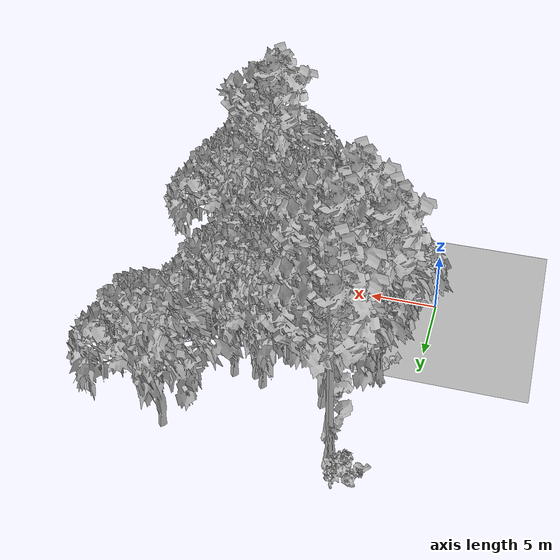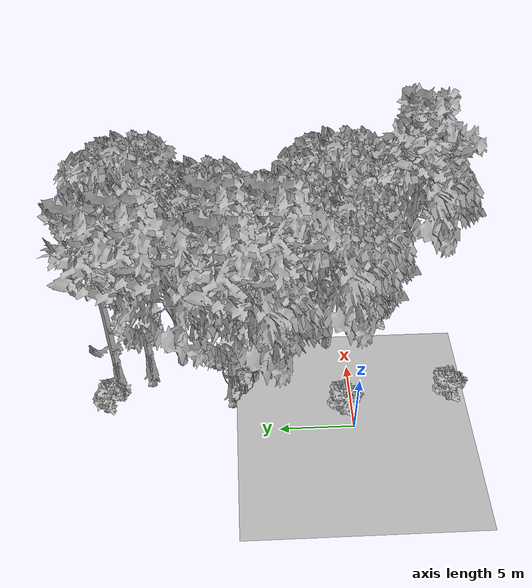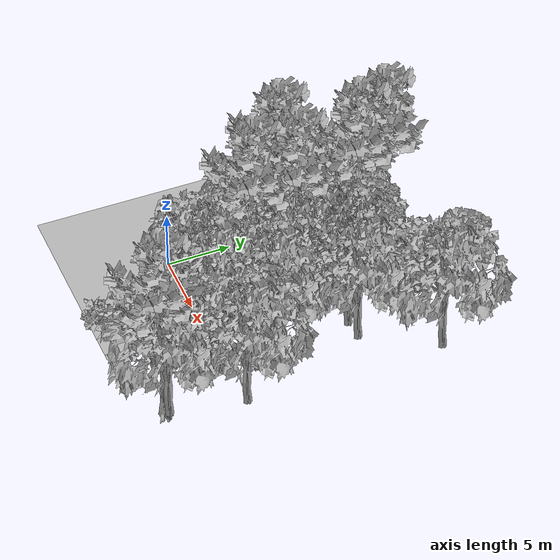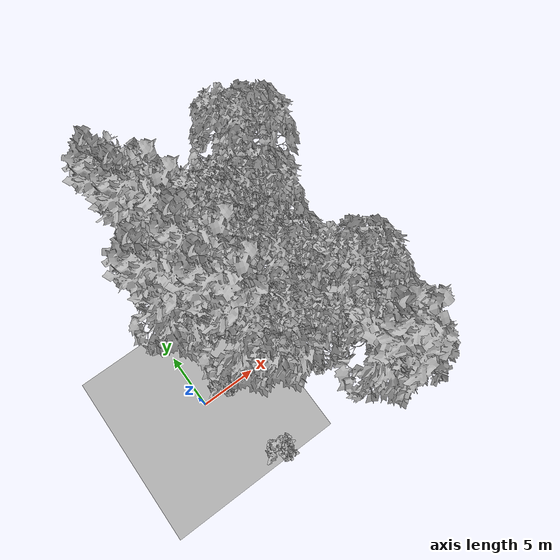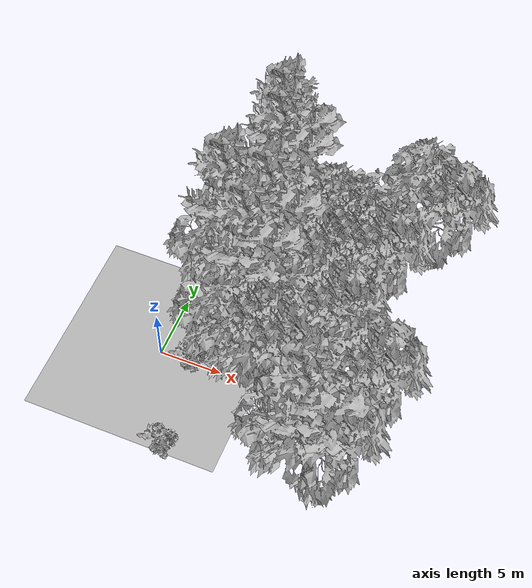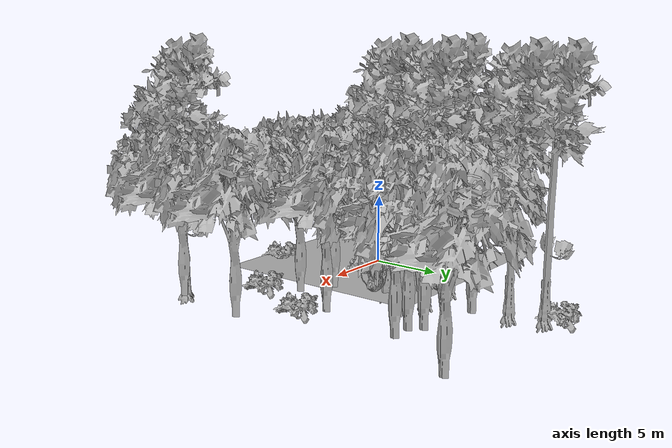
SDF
<sdf version="1.7">
 <world name="default">
  <model name="ground_plane">
   <static>1</static>
   <link name="link">
    <collision name="collision">
     <geometry><plane><normal>0 0 1</normal><size>70 70</size></plane></geometry>
     <surface><contact><ode><min_depth>0.01</min_depth><max_vel>0</max_vel></ode></contact></surface>
    </collision>
    <visual name="grass">
     <cast_shadows>0</cast_shadows>
     <geometry>
      <mesh>
       <scale>0.29000000000000004 0.29000000000000004 0.1</scale>
       <uri>file://grass_plane/meshes/grass_plane.dae</uri>
      </mesh>
     </geometry>
    </visual>
   </link>
  </model>
  <model name="Tree 26">
   <static>1</static>
   <pose>15.58509580757115 0.22075298277160726 0 1.57079 -0 0</pose>
   <link name="link">
    <collision name="collision">
     <geometry><mesh><scale>5 5 5</scale><uri>model://tree_2/meshes/tree_2.obj</uri></mesh></geometry>
    </collision>
    <visual name="visual">
     <geometry><mesh><scale>5 5 5</scale><uri>model://tree_2/meshes/tree_2.obj</uri></mesh></geometry>
    </visual>
   </link>
  </model>
  <model name="Tree 27">
   <static>1</static>
   <pose>10.238390388947401 10.880425491174996 0 1.57079 -0 0</pose>
   <link name="link">
    <collision name="collision">
     <geometry><mesh><scale>5 5 5</scale><uri>model://tree_2/meshes/tree_2.obj</uri></mesh></geometry>
    </collision>
    <visual name="visual">
     <geometry><mesh><scale>5 5 5</scale><uri>model://tree_2/meshes/tree_2.obj</uri></mesh></geometry>
    </visual>
   </link>
  </model>
  <model name="Tree 35">
   <static>1</static>
   <pose>11.281099403301724 4.115495006719684 0 1.57079 -0 0</pose>
   <link name="link">
    <collision name="collision">
     <geometry><mesh><scale>5 5 5</scale><uri>model://tree_2/meshes/tree_2.obj</uri></mesh></geometry>
    </collision>
    <visual name="visual">
     <geometry><mesh><scale>5 5 5</scale><uri>model://tree_2/meshes/tree_2.obj</uri></mesh></geometry>
    </visual>
   </link>
  </model>
  <model name="Tree 61">
   <static>1</static>
   <pose>4.095249499256525 6.536186322329648 0 1.57079 -0 0</pose>
   <link name="link">
    <collision name="collision">
     <geometry><mesh><scale>5 5 5</scale><uri>model://tree_2/meshes/tree_2.obj</uri></mesh></geometry>
    </collision>
    <visual name="visual">
     <geometry><mesh><scale>5 5 5</scale><uri>model://tree_2/meshes/tree_2.obj</uri></mesh></geometry>
    </visual>
   </link>
  </model>
  <model name="Tree 69">
   <static>1</static>
   <pose>6.011724966954532 8.18515269213453 0 1.57079 -0 0</pose>
   <link name="link">
    <collision name="collision">
     <geometry><mesh><scale>5 5 5</scale><uri>model://tree_9/meshes/tree_9.obj</uri></mesh></geometry>
    </collision>
    <visual name="visual">
     <geometry><mesh><scale>5 5 5</scale><uri>model://tree_9/meshes/tree_9.obj</uri></mesh></geometry>
    </visual>
   </link>
  </model>
  <model name="Tree 72">
   <static>1</static>
   <pose>14.599541815006539 -5.531881050292377 0 1.57079 -0 0</pose>
   <link name="link">
    <collision name="collision">
     <geometry><mesh><scale>5 5 5</scale><uri>model://tree_2/meshes/tree_2.obj</uri></mesh></geometry>
    </collision>
    <visual name="visual">
     <geometry><mesh><scale>5 5 5</scale><uri>model://tree_2/meshes/tree_2.obj</uri></mesh></geometry>
    </visual>
   </link>
  </model>
  <model name="Tree 93">
   <static>1</static>
   <pose>9.221249618141343 8.261637023976675 0 1.57079 -0 0</pose>
   <link name="link">
    <collision name="collision">
     <geometry><mesh><scale>5 5 5</scale><uri>model://tree_2/meshes/tree_2.obj</uri></mesh></geometry>
    </collision>
    <visual name="visual">
     <geometry><mesh><scale>5 5 5</scale><uri>model://tree_2/meshes/tree_2.obj</uri></mesh></geometry>
    </visual>
   </link>
  </model>
  <model name="Tree 100">
   <static>1</static>
   <pose>4.822747323057868 13.705361023878908 0 1.57079 -0 0</pose>
   <link name="link">
    <collision name="collision">
     <geometry><mesh><scale>5 5 5</scale><uri>model://tree_9/meshes/tree_9.obj</uri></mesh></geometry>
    </collision>
    <visual name="visual">
     <geometry><mesh><scale>5 5 5</scale><uri>model://tree_9/meshes/tree_9.obj</uri></mesh></geometry>
    </visual>
   </link>
  </model>
  <model name="Tree 108">
   <static>1</static>
   <pose>6.866897015822083 1.2492894031193345 0 1.57079 -0 0</pose>
   <link name="link">
    <collision name="collision">
     <geometry><mesh><scale>5 5 5</scale><uri>model://tree_2/meshes/tree_2.obj</uri></mesh></geometry>
    </collision>
    <visual name="visual">
     <geometry><mesh><scale>5 5 5</scale><uri>model://tree_2/meshes/tree_2.obj</uri></mesh></geometry>
    </visual>
   </link>
  </model>
  <model name="Tree 120">
   <static>1</static>
   <pose>14.335178731553633 -5.752093617057355 0 1.57079 -0 0</pose>
   <link name="link">
    <collision name="collision">
     <geometry><mesh><scale>5 5 5</scale><uri>model://tree_9/meshes/tree_9.obj</uri></mesh></geometry>
    </collision>
    <visual name="visual">
     <geometry><mesh><scale>5 5 5</scale><uri>model://tree_9/meshes/tree_9.obj</uri></mesh></geometry>
    </visual>
   </link>
  </model>
  <model name="Tree 148">
   <static>1</static>
   <pose>10.943577558148021 10.184361818373759 0 1.57079 -0 0</pose>
   <link name="link">
    <collision name="collision">
     <geometry><mesh><scale>5 5 5</scale><uri>model://tree_2/meshes/tree_2.obj</uri></mesh></geometry>
    </collision>
    <visual name="visual">
     <geometry><mesh><scale>5 5 5</scale><uri>model://tree_2/meshes/tree_2.obj</uri></mesh></geometry>
    </visual>
   </link>
  </model>
  <model name="Tree 150">
   <static>1</static>
   <pose>12.509722852684597 10.31445022210044 0 1.57079 -0 0</pose>
   <link name="link">
    <collision name="collision">
     <geometry><mesh><scale>5 5 5</scale><uri>model://tree_2/meshes/tree_2.obj</uri></mesh></geometry>
    </collision>
    <visual name="visual">
     <geometry><mesh><scale>5 5 5</scale><uri>model://tree_2/meshes/tree_2.obj</uri></mesh></geometry>
    </visual>
   </link>
  </model>
  <model name="Tree 156">
   <static>1</static>
   <pose>5.721993149144176 4.833981604031543 0 1.57079 -0 0</pose>
   <link name="link">
    <collision name="collision">
     <geometry><mesh><scale>5 5 5</scale><uri>model://tree_9/meshes/tree_9.obj</uri></mesh></geometry>
    </collision>
    <visual name="visual">
     <geometry><mesh><scale>5 5 5</scale><uri>model://tree_9/meshes/tree_9.obj</uri></mesh></geometry>
    </visual>
   </link>
  </model>
  <model name="Tree 160">
   <static>1</static>
   <pose>9.07987203211544 0.05797065233071663 0 1.57079 -0 0</pose>
   <link name="link">
    <collision name="collision">
     <geometry><mesh><scale>5 5 5</scale><uri>model://tree_2/meshes/tree_2.obj</uri></mesh></geometry>
    </collision>
    <visual name="visual">
     <geometry><mesh><scale>5 5 5</scale><uri>model://tree_2/meshes/tree_2.obj</uri></mesh></geometry>
    </visual>
   </link>
  </model>
  <model name="Tree 161">
   <static>1</static>
   <pose>2.7841489513659425 8.043093542228206 0 1.57079 -0 0</pose>
   <link name="link">
    <collision name="collision">
     <geometry><mesh><scale>5 5 5</scale><uri>model://tree_9/meshes/tree_9.obj</uri></mesh></geometry>
    </collision>
    <visual name="visual">
     <geometry><mesh><scale>5 5 5</scale><uri>model://tree_9/meshes/tree_9.obj</uri></mesh></geometry>
    </visual>
   </link>
  </model>
  <model name="Tree 174">
   <static>1</static>
   <pose>4.216668085343542 15.901347221744366 0 1.57079 -0 0</pose>
   <link name="link">
    <collision name="collision">
     <geometry><mesh><scale>5 5 5</scale><uri>model://tree_9/meshes/tree_9.obj</uri></mesh></geometry>
    </collision>
    <visual name="visual">
     <geometry><mesh><scale>5 5 5</scale><uri>model://tree_9/meshes/tree_9.obj</uri></mesh></geometry>
    </visual>
   </link>
  </model>
  <model name="Tree 184">
   <static>1</static>
   <pose>15.734986586202034 15.779677339755168 0 1.57079 -0 0</pose>
   <link name="link">
    <collision name="collision">
     <geometry><mesh><scale>5 5 5</scale><uri>model://tree_2/meshes/tree_2.obj</uri></mesh></geometry>
    </collision>
    <visual name="visual">
     <geometry><mesh><scale>5 5 5</scale><uri>model://tree_2/meshes/tree_2.obj</uri></mesh></geometry>
    </visual>
   </link>
  </model>
  <model name="Tree 237">
   <static>1</static>
   <pose>5.756458513779066 11.583412664299722 0 1.57079 -0 0</pose>
   <link name="link">
    <collision name="collision">
     <geometry><mesh><scale>5 5 5</scale><uri>model://tree_2/meshes/tree_2.obj</uri></mesh></geometry>
    </collision>
    <visual name="visual">
     <geometry><mesh><scale>5 5 5</scale><uri>model://tree_2/meshes/tree_2.obj</uri></mesh></geometry>
    </visual>
   </link>
  </model>
  <model name="Bush 6">
   <static>1</static>
   <pose>3.0891969880990615 16.396958676769067 0 1.57079 -0 0</pose>
   <link name="link">
    <collision name="collision">
     <geometry><mesh><scale>2 2 2</scale><uri>model://bush_2/meshes/bush_2.obj</uri></mesh></geometry>
    </collision>
    <visual name="visual">
     <geometry><mesh><scale>5 5 5</scale><uri>model://bush_2/meshes/bush_2.obj</uri></mesh></geometry>
    </visual>
   </link>
  </model>
  <model name="Bush 14">
   <static>1</static>
   <pose>6.139391615380937 4.147782279685664 0 1.57079 -0 0</pose>
   <link name="link">
    <collision name="collision">
     <geometry><mesh><scale>2 2 2</scale><uri>model://bush_4/meshes/bush_4.obj</uri></mesh></geometry>
    </collision>
    <visual name="visual">
     <geometry><mesh><scale>5 5 5</scale><uri>model://bush_4/meshes/bush_4.obj</uri></mesh></geometry>
    </visual>
   </link>
  </model>
  <model name="Bush 23">
   <static>1</static>
   <pose>2.1938088033039023 0.4037384199645544 0 1.57079 -0 0</pose>
   <link name="link">
    <collision name="collision">
     <geometry><mesh><scale>2 2 2</scale><uri>model://bush_2/meshes/bush_2.obj</uri></mesh></geometry>
    </collision>
    <visual name="visual">
     <geometry><mesh><scale>5 5 5</scale><uri>model://bush_2/meshes/bush_2.obj</uri></mesh></geometry>
    </visual>
   </link>
  </model>
  <model name="Bush 24">
   <static>1</static>
   <pose>3.171661978323378 7.469542724477158 0 1.57079 -0 0</pose>
   <link name="link">
    <collision name="collision">
     <geometry><mesh><scale>2 2 2</scale><uri>model://bush_4/meshes/bush_4.obj</uri></mesh></geometry>
    </collision>
    <visual name="visual">
     <geometry><mesh><scale>5 5 5</scale><uri>model://bush_4/meshes/bush_4.obj</uri></mesh></geometry>
    </visual>
   </link>
  </model>
  <model name="Bush 27">
   <static>1</static>
   <pose>3.0604295566757855 -6.980618744464785 0 1.57079 -0 0</pose>
   <link name="link">
    <collision name="collision">
     <geometry><mesh><scale>2 2 2</scale><uri>model://bush_2/meshes/bush_2.obj</uri></mesh></geometry>
    </collision>
    <visual name="visual">
     <geometry><mesh><scale>5 5 5</scale><uri>model://bush_2/meshes/bush_2.obj</uri></mesh></geometry>
    </visual>
   </link>
  </model>
  <model name="Bush 28">
   <static>1</static>
   <pose>9.705329535374148 -2.7535429207389015 0 1.57079 -0 0</pose>
   <link name="link">
    <collision name="collision">
     <geometry><mesh><scale>2 2 2</scale><uri>model://bush_2/meshes/bush_2.obj</uri></mesh></geometry>
    </collision>
    <visual name="visual">
     <geometry><mesh><scale>5 5 5</scale><uri>model://bush_2/meshes/bush_2.obj</uri></mesh></geometry>
    </visual>
   </link>
  </model>
  <model name="Bush 30">
   <static>1</static>
   <pose>12.040320492652704 2.2936341099110678 0 1.57079 -0 0</pose>
   <link name="link">
    <collision name="collision">
     <geometry><mesh><scale>2 2 2</scale><uri>model://bush_2/meshes/bush_2.obj</uri></mesh></geometry>
    </collision>
    <visual name="visual">
     <geometry><mesh><scale>5 5 5</scale><uri>model://bush_2/meshes/bush_2.obj</uri></mesh></geometry>
    </visual>
   </link>
  </model>
 </world>
</sdf>
